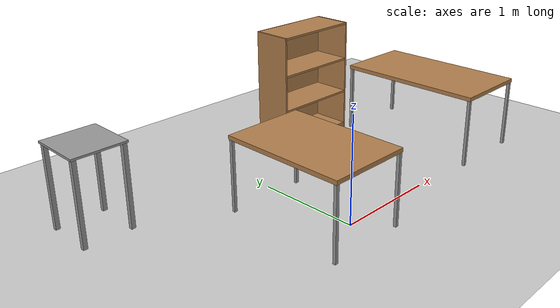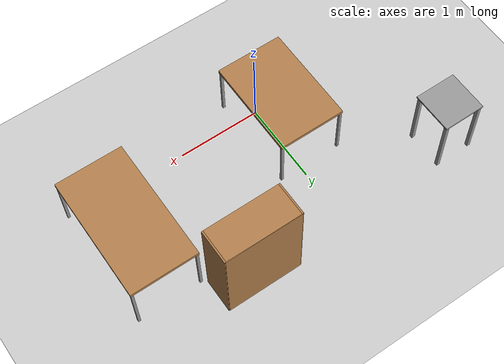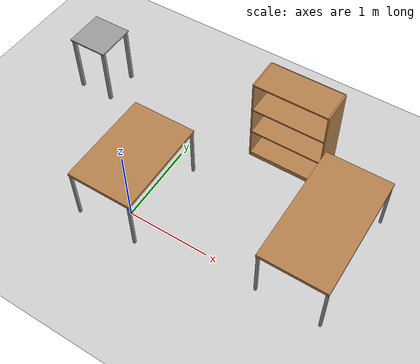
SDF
<sdf version="1.6">
 <world name="default">
  <model name="ground_plane">
   <static>1</static>
   <link name="link">
    <collision name="collision">
     <geometry><plane><normal>0 0 1</normal><size>100 100</size></plane></geometry>
     <surface>
      <contact><collide_bitmask>65535</collide_bitmask></contact>
      <friction><ode><mu>100</mu><mu2>50</mu2></ode></friction>
     </surface>
    </collision>
    <visual name="visual">
     <cast_shadows>0</cast_shadows>
     <geometry><plane><normal>0 0 1</normal><size>100 100</size></plane></geometry>
     <material>
      <script><uri>file://media/materials/scripts/gazebo.material</uri><name>Gazebo/Grey</name></script>
     </material>
    </visual>
   </link>
  </model>
  <model name="bookshelf_0">
   <static>1</static>
   <link name="link">
    <inertial><mass>1</mass></inertial>
    <collision name="back">
     <pose>0 0.005 0.6 0 -0 0</pose>
     <geometry><box><size>0.9 0.01 1.2</size></box></geometry>
    </collision>
    <visual name="visual1">
     <pose>0 0.005 0.6 0 -0 0</pose>
     <geometry><box><size>0.9 0.01 1.2</size></box></geometry>
     <material>
      <script><uri>file://media/materials/scripts/gazebo.material</uri><name>Gazebo/Wood</name></script>
     </material>
    </visual>
    <collision name="left_side">
     <pose>0.45 -0.195 0.6 0 -0 0</pose>
     <geometry><box><size>0.02 0.4 1.2</size></box></geometry>
    </collision>
    <visual name="visual2">
     <pose>0.45 -0.195 0.6 0 -0 0</pose>
     <geometry><box><size>0.02 0.4 1.2</size></box></geometry>
     <material>
      <script><uri>file://media/materials/scripts/gazebo.material</uri><name>Gazebo/Wood</name></script>
     </material>
    </visual>
    <collision name="right_side">
     <pose>-0.45 -0.195 0.6 0 -0 0</pose>
     <geometry><box><size>0.02 0.4 1.2</size></box></geometry>
    </collision>
    <visual name="visual3">
     <pose>-0.45 -0.195 0.6 0 -0 0</pose>
     <geometry><box><size>0.02 0.4 1.2</size></box></geometry>
     <material>
      <script><uri>file://media/materials/scripts/gazebo.material</uri><name>Gazebo/Wood</name></script>
     </material>
    </visual>
    <collision name="bottom">
     <pose>0 -0.195 0.03 0 -0 0</pose>
     <geometry><box><size>0.88 0.4 0.06</size></box></geometry>
    </collision>
    <visual name="visual4">
     <pose>0 -0.195 0.03 0 -0 0</pose>
     <geometry><box><size>0.88 0.4 0.06</size></box></geometry>
     <material>
      <script><uri>file://media/materials/scripts/gazebo.material</uri><name>Gazebo/Wood</name></script>
     </material>
    </visual>
    <collision name="top">
     <pose>0 -0.195 1.19 0 -0 0</pose>
     <geometry><box><size>0.88 0.4 0.02</size></box></geometry>
    </collision>
    <visual name="visual5">
     <pose>0 -0.195 1.19 0 -0 0</pose>
     <geometry><box><size>0.88 0.4 0.02</size></box></geometry>
     <material>
      <script><uri>file://media/materials/scripts/gazebo.material</uri><name>Gazebo/Wood</name></script>
     </material>
    </visual>
    <collision name="low_shelf">
     <pose>0 -0.195 0.43 0 -0 0</pose>
     <geometry><box><size>0.88 0.4 0.02</size></box></geometry>
    </collision>
    <visual name="visual6">
     <pose>0 -0.195 0.43 0 -0 0</pose>
     <geometry><box><size>0.88 0.4 0.02</size></box></geometry>
     <material>
      <script><uri>file://media/materials/scripts/gazebo.material</uri><name>Gazebo/Wood</name></script>
     </material>
    </visual>
    <collision name="high_shelf">
     <pose>0 -0.195 0.8 0 -0 0</pose>
     <geometry><box><size>0.88 0.4 0.02</size></box></geometry>
    </collision>
    <visual name="visual7">
     <pose>0 -0.195 0.8 0 -0 0</pose>
     <geometry><box><size>0.88 0.4 0.02</size></box></geometry>
     <material>
      <script><uri>file://media/materials/scripts/gazebo.material</uri><name>Gazebo/Wood</name></script>
     </material>
    </visual>
   </link>
   <pose>1.14304 1.83732 0 0 -0 0</pose>
  </model>
  <model name="table_short_clone_clone">
   <link name="link">
    <inertial>
     <mass>1</mass>
     <inertia><ixx>1</ixx><ixy>0</ixy><ixz>0</ixz><iyy>1</iyy><iyz>0</iyz><izz>1</izz></inertia>
    </inertial>
    <visual name="front_right_leg">
     <pose>0.58 -0.38 0.35 0 -0 0</pose>
     <geometry><box><size>0.03 0.03 0.7</size></box></geometry>
     <material>
      <script><uri>file://media/materials/scripts/gazebo.material</uri><name>Gazebo/Grey</name></script>
      <ambient>0.3 0.3 0.3 1</ambient>
      <diffuse>0.7 0.7 0.7 1</diffuse>
      <specular>0.01 0.01 0.01 1</specular>
      <emissive>0 0 0 1</emissive>
     </material>
    </visual>
    <visual name="back_left_leg">
     <pose>-0.58 0.38 0.35 0 -0 0</pose>
     <geometry><box><size>0.03 0.03 0.7</size></box></geometry>
     <material>
      <script><uri>file://media/materials/scripts/gazebo.material</uri><name>Gazebo/Grey</name></script>
      <ambient>0.3 0.3 0.3 1</ambient>
      <diffuse>0.7 0.7 0.7 1</diffuse>
      <specular>0.01 0.01 0.01 1</specular>
      <emissive>0 0 0 1</emissive>
     </material>
    </visual>
    <visual name="front_left_leg">
     <pose>0.58 0.38 0.35 0 -0 0</pose>
     <geometry><box><size>0.03 0.03 0.7</size></box></geometry>
     <material>
      <script><uri>file://media/materials/scripts/gazebo.material</uri><name>Gazebo/Grey</name></script>
      <ambient>0.3 0.3 0.3 1</ambient>
      <diffuse>0.7 0.7 0.7 1</diffuse>
      <specular>0.01 0.01 0.01 1</specular>
      <emissive>0 0 0 1</emissive>
     </material>
    </visual>
    <visual name="back_right_leg">
     <pose>-0.58 -0.38 0.35 0 -0 0</pose>
     <geometry><box><size>0.03 0.03 0.7</size></box></geometry>
     <material>
      <script><uri>file://media/materials/scripts/gazebo.material</uri><name>Gazebo/Grey</name></script>
      <ambient>0.3 0.3 0.3 1</ambient>
      <diffuse>0.7 0.7 0.7 1</diffuse>
      <specular>0.01 0.01 0.01 1</specular>
      <emissive>0 0 0 1</emissive>
     </material>
    </visual>
    <visual name="visual1">
     <pose>0 0 0.7 0 -0 0</pose>
     <geometry><box><size>1.2 0.8 0.04</size></box></geometry>
     <material>
      <script><uri>file://media/materials/scripts/gazebo.material</uri><name>Gazebo/Wood</name></script>
      <ambient>1 1 1 1</ambient>
      <diffuse>1 1 1 1</diffuse>
      <specular>0.2 0.2 0.2 1</specular>
      <emissive>0 0 0 1</emissive>
     </material>
    </visual>
    <collision name="front_right_leg">
     <pose>0.58 -0.38 0.35 0 -0 0</pose>
     <geometry><box><size>0.03 0.03 0.7</size></box></geometry>
     <surface>
      <friction>
       <ode><mu>1</mu><mu2>1</mu2><fdir1>0 0 0</fdir1><slip1>0</slip1><slip2>0</slip2></ode>
       <torsional>
        <coefficient>1</coefficient>
        <patch_radius>0</patch_radius>
        <surface_radius>0</surface_radius>
        <use_patch_radius>1</use_patch_radius>
        <ode><slip>0</slip></ode>
       </torsional>
      </friction>
      <bounce><restitution_coefficient>0</restitution_coefficient><threshold>1e+06</threshold></bounce>
      <contact>
       <collide_without_contact>0</collide_without_contact>
       <collide_without_contact_bitmask>1</collide_without_contact_bitmask>
       <collide_bitmask>1</collide_bitmask>
       <ode>
        <soft_cfm>0</soft_cfm>
        <soft_erp>0.2</soft_erp>
        <kp>1e+13</kp>
        <kd>1</kd>
        <max_vel>0.01</max_vel>
        <min_depth>0</min_depth>
       </ode>
      </contact>
     </surface>
    </collision>
    <collision name="back_left_leg">
     <pose>-0.58 0.38 0.35 0 -0 0</pose>
     <geometry><box><size>0.03 0.03 0.7</size></box></geometry>
     <surface>
      <friction>
       <ode><mu>1</mu><mu2>1</mu2><fdir1>0 0 0</fdir1><slip1>0</slip1><slip2>0</slip2></ode>
       <torsional>
        <coefficient>1</coefficient>
        <patch_radius>0</patch_radius>
        <surface_radius>0</surface_radius>
        <use_patch_radius>1</use_patch_radius>
        <ode><slip>0</slip></ode>
       </torsional>
      </friction>
      <bounce><restitution_coefficient>0</restitution_coefficient><threshold>1e+06</threshold></bounce>
      <contact>
       <collide_without_contact>0</collide_without_contact>
       <collide_without_contact_bitmask>1</collide_without_contact_bitmask>
       <collide_bitmask>1</collide_bitmask>
       <ode>
        <soft_cfm>0</soft_cfm>
        <soft_erp>0.2</soft_erp>
        <kp>1e+13</kp>
        <kd>1</kd>
        <max_vel>0.01</max_vel>
        <min_depth>0</min_depth>
       </ode>
      </contact>
     </surface>
    </collision>
    <collision name="back_right_leg">
     <pose>-0.58 -0.38 0.35 0 -0 0</pose>
     <geometry><box><size>0.03 0.03 0.7</size></box></geometry>
     <surface>
      <friction>
       <ode><mu>1</mu><mu2>1</mu2><fdir1>0 0 0</fdir1><slip1>0</slip1><slip2>0</slip2></ode>
       <torsional>
        <coefficient>1</coefficient>
        <patch_radius>0</patch_radius>
        <surface_radius>0</surface_radius>
        <use_patch_radius>1</use_patch_radius>
        <ode><slip>0</slip></ode>
       </torsional>
      </friction>
      <bounce><restitution_coefficient>0</restitution_coefficient><threshold>1e+06</threshold></bounce>
      <contact>
       <collide_without_contact>0</collide_without_contact>
       <collide_without_contact_bitmask>1</collide_without_contact_bitmask>
       <collide_bitmask>1</collide_bitmask>
       <ode>
        <soft_cfm>0</soft_cfm>
        <soft_erp>0.2</soft_erp>
        <kp>1e+13</kp>
        <kd>1</kd>
        <max_vel>0.01</max_vel>
        <min_depth>0</min_depth>
       </ode>
      </contact>
     </surface>
    </collision>
    <collision name="surface">
     <pose>0 0 0.7 0 -0 0</pose>
     <geometry><box><size>1.2 0.8 0.04</size></box></geometry>
     <surface>
      <friction>
       <ode><mu>0.6</mu><mu2>0.6</mu2><fdir1>0 0 0</fdir1><slip1>0</slip1><slip2>0</slip2></ode>
       <torsional>
        <coefficient>1</coefficient>
        <patch_radius>0</patch_radius>
        <surface_radius>0</surface_radius>
        <use_patch_radius>1</use_patch_radius>
        <ode><slip>0</slip></ode>
       </torsional>
      </friction>
      <bounce><restitution_coefficient>0</restitution_coefficient><threshold>1e+06</threshold></bounce>
      <contact>
       <collide_without_contact>0</collide_without_contact>
       <collide_without_contact_bitmask>1</collide_without_contact_bitmask>
       <collide_bitmask>1</collide_bitmask>
       <ode>
        <soft_cfm>0</soft_cfm>
        <soft_erp>0.2</soft_erp>
        <kp>1e+13</kp>
        <kd>1</kd>
        <max_vel>0.01</max_vel>
        <min_depth>0</min_depth>
       </ode>
      </contact>
     </surface>
    </collision>
    <collision name="front_left_leg">
     <pose>0.58 0.38 0.35 0 -0 0</pose>
     <geometry><box><size>0.03 0.03 0.699999</size></box></geometry>
     <surface>
      <friction>
       <ode><mu>1</mu><mu2>1</mu2><fdir1>0 0 0</fdir1><slip1>0</slip1><slip2>0</slip2></ode>
       <torsional>
        <coefficient>1</coefficient>
        <patch_radius>0</patch_radius>
        <surface_radius>0</surface_radius>
        <use_patch_radius>1</use_patch_radius>
        <ode><slip>0</slip></ode>
       </torsional>
      </friction>
      <bounce><restitution_coefficient>0</restitution_coefficient><threshold>1e+06</threshold></bounce>
      <contact>
       <collide_without_contact>0</collide_without_contact>
       <collide_without_contact_bitmask>1</collide_without_contact_bitmask>
       <collide_bitmask>1</collide_bitmask>
       <ode>
        <soft_cfm>0</soft_cfm>
        <soft_erp>0.2</soft_erp>
        <kp>1e+13</kp>
        <kd>1</kd>
        <max_vel>0.01</max_vel>
        <min_depth>0</min_depth>
       </ode>
      </contact>
     </surface>
    </collision>
   </link>
   <static>1</static>
   <pose>-0.127935 0.300923 0 0 -0 1.57</pose>
  </model>
  <model name="table_long_clone_clone_0">
   <link name="link">
    <inertial>
     <mass>1</mass>
     <inertia><ixx>1</ixx><ixy>0</ixy><ixz>0</ixz><iyy>1</iyy><iyz>0</iyz><izz>1</izz></inertia>
    </inertial>
    <visual name="front_left_leg">
     <pose>0.73 0.38 0.35 0 -0 0</pose>
     <geometry><box><size>0.03 0.03 0.7</size></box></geometry>
     <material>
      <script><uri>file://media/materials/scripts/gazebo.material</uri><name>Gazebo/Grey</name></script>
      <ambient>0.3 0.3 0.3 1</ambient>
      <diffuse>0.7 0.7 0.7 1</diffuse>
      <specular>0.01 0.01 0.01 1</specular>
      <emissive>0 0 0 1</emissive>
     </material>
    </visual>
    <visual name="front_right_leg">
     <pose>0.73 -0.38 0.35 0 -0 0</pose>
     <geometry><box><size>0.03 0.03 0.7</size></box></geometry>
     <material>
      <script><uri>file://media/materials/scripts/gazebo.material</uri><name>Gazebo/Grey</name></script>
      <ambient>0.3 0.3 0.3 1</ambient>
      <diffuse>0.7 0.7 0.7 1</diffuse>
      <specular>0.01 0.01 0.01 1</specular>
      <emissive>0 0 0 1</emissive>
     </material>
    </visual>
    <visual name="visual1">
     <pose>0 0 0.7 0 -0 0</pose>
     <geometry><box><size>1.5 0.8 0.04</size></box></geometry>
     <material>
      <script><uri>file://media/materials/scripts/gazebo.material</uri><name>Gazebo/Wood</name></script>
      <ambient>1 1 1 1</ambient>
      <diffuse>1 1 1 1</diffuse>
      <specular>0.2 0.2 0.2 1</specular>
      <emissive>0 0 0 1</emissive>
     </material>
    </visual>
    <visual name="back_right_leg">
     <pose>-0.73 -0.38 0.35 0 -0 0</pose>
     <geometry><box><size>0.03 0.03 0.7</size></box></geometry>
     <material>
      <script><uri>file://media/materials/scripts/gazebo.material</uri><name>Gazebo/Grey</name></script>
      <ambient>0.3 0.3 0.3 1</ambient>
      <diffuse>0.7 0.7 0.7 1</diffuse>
      <specular>0.01 0.01 0.01 1</specular>
      <emissive>0 0 0 1</emissive>
     </material>
    </visual>
    <visual name="back_left_leg">
     <pose>-0.73 0.38 0.35 0 -0 0</pose>
     <geometry><box><size>0.03 0.03 0.7</size></box></geometry>
     <material>
      <script><uri>file://media/materials/scripts/gazebo.material</uri><name>Gazebo/Grey</name></script>
      <ambient>0.3 0.3 0.3 1</ambient>
      <diffuse>0.7 0.7 0.7 1</diffuse>
      <specular>0.01 0.01 0.01 1</specular>
      <emissive>0 0 0 1</emissive>
     </material>
    </visual>
    <collision name="front_right_leg">
     <pose>0.73 -0.38 0.35 0 -0 0</pose>
     <geometry><box><size>0.03 0.03 0.7</size></box></geometry>
     <surface>
      <friction>
       <ode><mu>1</mu><mu2>1</mu2><fdir1>0 0 0</fdir1><slip1>0</slip1><slip2>0</slip2></ode>
       <torsional>
        <coefficient>1</coefficient>
        <patch_radius>0</patch_radius>
        <surface_radius>0</surface_radius>
        <use_patch_radius>1</use_patch_radius>
        <ode><slip>0</slip></ode>
       </torsional>
      </friction>
      <bounce><restitution_coefficient>0</restitution_coefficient><threshold>1e+06</threshold></bounce>
      <contact>
       <collide_without_contact>0</collide_without_contact>
       <collide_without_contact_bitmask>1</collide_without_contact_bitmask>
       <collide_bitmask>1</collide_bitmask>
       <ode>
        <soft_cfm>0</soft_cfm>
        <soft_erp>0.2</soft_erp>
        <kp>1e+13</kp>
        <kd>1</kd>
        <max_vel>0.01</max_vel>
        <min_depth>0</min_depth>
       </ode>
      </contact>
     </surface>
    </collision>
    <collision name="front_left_leg">
     <pose>0.73 0.38 0.35 0 -0 0</pose>
     <geometry><box><size>0.03 0.03 0.699999</size></box></geometry>
     <surface>
      <friction>
       <ode><mu>1</mu><mu2>1</mu2><fdir1>0 0 0</fdir1><slip1>0</slip1><slip2>0</slip2></ode>
       <torsional>
        <coefficient>1</coefficient>
        <patch_radius>0</patch_radius>
        <surface_radius>0</surface_radius>
        <use_patch_radius>1</use_patch_radius>
        <ode><slip>0</slip></ode>
       </torsional>
      </friction>
      <bounce><restitution_coefficient>0</restitution_coefficient><threshold>1e+06</threshold></bounce>
      <contact>
       <collide_without_contact>0</collide_without_contact>
       <collide_without_contact_bitmask>1</collide_without_contact_bitmask>
       <collide_bitmask>1</collide_bitmask>
       <ode>
        <soft_cfm>0</soft_cfm>
        <soft_erp>0.2</soft_erp>
        <kp>1e+13</kp>
        <kd>1</kd>
        <max_vel>0.01</max_vel>
        <min_depth>0</min_depth>
       </ode>
      </contact>
     </surface>
    </collision>
    <collision name="back_right_leg">
     <pose>-0.73 -0.38 0.35 0 -0 0</pose>
     <geometry><box><size>0.03 0.03 0.7</size></box></geometry>
     <surface>
      <friction>
       <ode><mu>1</mu><mu2>1</mu2><fdir1>0 0 0</fdir1><slip1>0</slip1><slip2>0</slip2></ode>
       <torsional>
        <coefficient>1</coefficient>
        <patch_radius>0</patch_radius>
        <surface_radius>0</surface_radius>
        <use_patch_radius>1</use_patch_radius>
        <ode><slip>0</slip></ode>
       </torsional>
      </friction>
      <bounce><restitution_coefficient>0</restitution_coefficient><threshold>1e+06</threshold></bounce>
      <contact>
       <collide_without_contact>0</collide_without_contact>
       <collide_without_contact_bitmask>1</collide_without_contact_bitmask>
       <collide_bitmask>1</collide_bitmask>
       <ode>
        <soft_cfm>0</soft_cfm>
        <soft_erp>0.2</soft_erp>
        <kp>1e+13</kp>
        <kd>1</kd>
        <max_vel>0.01</max_vel>
        <min_depth>0</min_depth>
       </ode>
      </contact>
     </surface>
    </collision>
    <collision name="surface">
     <pose>0 0 0.7 0 -0 0</pose>
     <geometry><box><size>1.5 0.8 0.04</size></box></geometry>
     <surface>
      <friction>
       <ode><mu>0.6</mu><mu2>0.6</mu2><fdir1>0 0 0</fdir1><slip1>0</slip1><slip2>0</slip2></ode>
       <torsional>
        <coefficient>1</coefficient>
        <patch_radius>0</patch_radius>
        <surface_radius>0</surface_radius>
        <use_patch_radius>1</use_patch_radius>
        <ode><slip>0</slip></ode>
       </torsional>
      </friction>
      <bounce><restitution_coefficient>0</restitution_coefficient><threshold>1e+06</threshold></bounce>
      <contact>
       <collide_without_contact>0</collide_without_contact>
       <collide_without_contact_bitmask>1</collide_without_contact_bitmask>
       <collide_bitmask>1</collide_bitmask>
       <ode>
        <soft_cfm>0</soft_cfm>
        <soft_erp>0.2</soft_erp>
        <kp>1e+13</kp>
        <kd>1</kd>
        <max_vel>0.01</max_vel>
        <min_depth>0</min_depth>
       </ode>
      </contact>
     </surface>
    </collision>
    <collision name="back_left_leg">
     <pose>-0.73 0.38 0.35 0 -0 0</pose>
     <geometry><box><size>0.03 0.03 0.7</size></box></geometry>
     <surface>
      <friction>
       <ode><mu>1</mu><mu2>1</mu2><fdir1>0 0 0</fdir1><slip1>0</slip1><slip2>0</slip2></ode>
       <torsional>
        <coefficient>1</coefficient>
        <patch_radius>0</patch_radius>
        <surface_radius>0</surface_radius>
        <use_patch_radius>1</use_patch_radius>
        <ode><slip>0</slip></ode>
       </torsional>
      </friction>
      <bounce><restitution_coefficient>0</restitution_coefficient><threshold>1e+06</threshold></bounce>
      <contact>
       <collide_without_contact>0</collide_without_contact>
       <collide_without_contact_bitmask>1</collide_without_contact_bitmask>
       <collide_bitmask>1</collide_bitmask>
       <ode>
        <soft_cfm>0</soft_cfm>
        <soft_erp>0.2</soft_erp>
        <kp>1e+13</kp>
        <kd>1</kd>
        <max_vel>0.01</max_vel>
        <min_depth>0</min_depth>
       </ode>
      </contact>
     </surface>
    </collision>
   </link>
   <static>1</static>
   <pose>2.03939 0.663756 0 0 -0 1.57</pose>
  </model>
  <model name="ur_base_modify">
   <link name="ur_base_top_plate">
    <pose>0 0 0.79 0 -0 0</pose>
    <inertial>
     <mass>1</mass>
     <inertia><ixx>1</ixx><ixy>0</ixy><ixz>0</ixz><iyy>1</iyy><iyz>0</iyz><izz>1</izz></inertia>
    </inertial>
    <visual name="top_plate_visual">
     <geometry><box><size>0.5 0.5 0.02</size></box></geometry>
     <material>
      <script><uri>file://media/materials/scripts/gazebo.material</uri><name>Gazebo/Grey</name></script>
      <ambient>0.18 0.204 0.212 1</ambient>
      <diffuse>0.18 0.204 0.212 1</diffuse>
      <specular>0.18 0.204 0.212 1</specular>
      <emissive>0 0 0 1</emissive>
     </material>
    </visual>
    <collision name="top_plate_collision">
     <geometry><box><size>0.5 0.5 0.02</size></box></geometry>
     <surface>
      <friction>
       <ode><mu>1</mu><mu2>1</mu2><fdir1>0 0 0</fdir1><slip1>0</slip1><slip2>0</slip2></ode>
       <torsional>
        <coefficient>1</coefficient>
        <patch_radius>0</patch_radius>
        <surface_radius>0</surface_radius>
        <use_patch_radius>1</use_patch_radius>
        <ode><slip>0</slip></ode>
       </torsional>
      </friction>
      <bounce><restitution_coefficient>0</restitution_coefficient><threshold>1e+06</threshold></bounce>
      <contact>
       <collide_without_contact>0</collide_without_contact>
       <collide_without_contact_bitmask>1</collide_without_contact_bitmask>
       <collide_bitmask>1</collide_bitmask>
       <ode>
        <soft_cfm>0</soft_cfm>
        <soft_erp>0.2</soft_erp>
        <kp>1e+13</kp>
        <kd>1</kd>
        <max_vel>0.01</max_vel>
        <min_depth>0</min_depth>
       </ode>
      </contact>
     </surface>
    </collision>
   </link>
   <link name="ur_base_leg1">
    <pose>0.22 0.22 0.35 0 -0 0</pose>
    <inertial>
     <mass>1</mass>
     <inertia><ixx>1</ixx><ixy>0</ixy><ixz>0</ixz><iyy>1</iyy><iyz>0</iyz><izz>1</izz></inertia>
    </inertial>
    <visual name="leg1_visual">
     <geometry><box><size>0.04 0.04 0.79</size></box></geometry>
     <material>
      <script><uri>file://media/materials/scripts/gazebo.material</uri><name>Gazebo/Grey</name></script>
      <ambient>0.3 0.3 0.3 1</ambient>
      <diffuse>0.7 0.7 0.7 1</diffuse>
      <specular>0.01 0.01 0.01 1</specular>
      <emissive>0 0 0 1</emissive>
     </material>
     <pose>0 0 0.05 0 -0 0</pose>
    </visual>
   </link>
   <link name="ur_base_leg2">
    <pose>-0.22 0.22 0.35 0 -0 0</pose>
    <inertial>
     <mass>1</mass>
     <inertia><ixx>1</ixx><ixy>0</ixy><ixz>0</ixz><iyy>1</iyy><iyz>0</iyz><izz>1</izz></inertia>
    </inertial>
    <visual name="leg2_visual">
     <geometry><box><size>0.04 0.04 0.79</size></box></geometry>
     <material>
      <script><uri>file://media/materials/scripts/gazebo.material</uri><name>Gazebo/Grey</name></script>
      <ambient>0.3 0.3 0.3 1</ambient>
      <diffuse>0.7 0.7 0.7 1</diffuse>
      <specular>0.01 0.01 0.01 1</specular>
      <emissive>0 0 0 1</emissive>
     </material>
     <pose>0 0 0.05 0 -0 0</pose>
    </visual>
   </link>
   <link name="ur_base_leg3">
    <pose>0.22 -0.22 0.35 0 -0 0</pose>
    <inertial>
     <mass>1</mass>
     <pose>0 0 0.405 0 -0 0</pose>
     <inertia><ixx>1</ixx><ixy>0</ixy><ixz>0</ixz><iyy>1</iyy><iyz>0</iyz><izz>1</izz></inertia>
    </inertial>
    <visual name="leg3_visual">
     <geometry><box><size>0.04 0.04 0.79</size></box></geometry>
     <material>
      <script><uri>file://media/materials/scripts/gazebo.material</uri><name>Gazebo/Grey</name></script>
      <ambient>0.3 0.3 0.3 1</ambient>
      <diffuse>0.7 0.7 0.7 1</diffuse>
      <specular>0.01 0.01 0.01 1</specular>
      <emissive>0 0 0 1</emissive>
     </material>
     <pose>0 0 0.05 0 -0 0</pose>
    </visual>
   </link>
   <link name="ur_base_leg4">
    <pose>-0.22 -0.22 0.35 0 -0 0</pose>
    <inertial>
     <mass>1</mass>
     <inertia><ixx>1</ixx><ixy>0</ixy><ixz>0</ixz><iyy>1</iyy><iyz>0</iyz><izz>1</izz></inertia>
    </inertial>
    <visual name="leg4_visual">
     <geometry><box><size>0.04 0.04 0.79</size></box></geometry>
     <material>
      <script><uri>file://media/materials/scripts/gazebo.material</uri><name>Gazebo/Grey</name></script>
      <ambient>0.3 0.3 0.3 1</ambient>
      <diffuse>0.7 0.7 0.7 1</diffuse>
      <specular>0.01 0.01 0.01 1</specular>
      <emissive>0 0 0 1</emissive>
     </material>
     <pose>0 0 0.05 0 -0 0</pose>
    </visual>
   </link>
   <static>1</static>
   <pose>-1.5 1.5 0 0 -0 0</pose>
  </model>
 </world>
</sdf>
